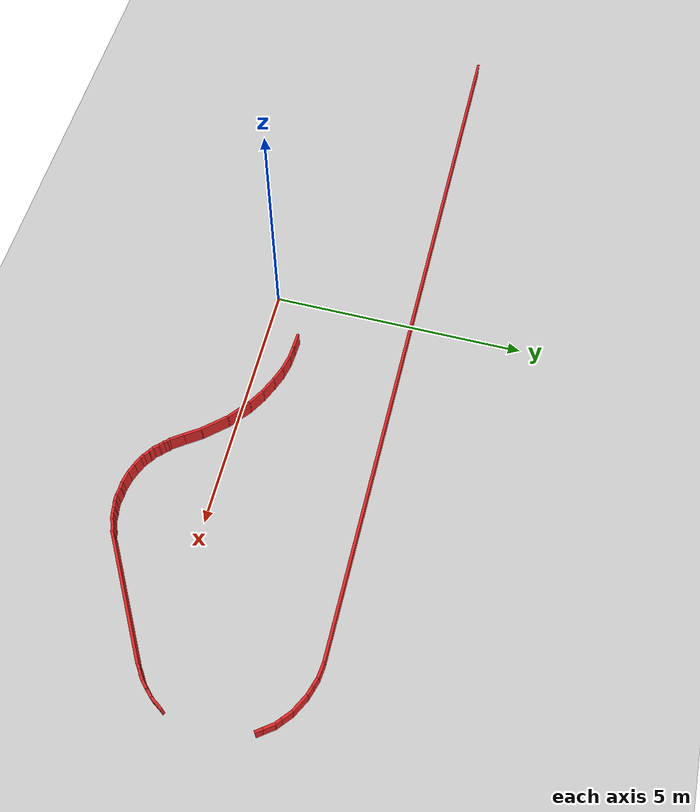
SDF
<sdf version="1.8">
 <world name="warehouse">
  <model name="ground_plane">
   <static>1</static>
   <link name="link">
    <collision name="collision">
     <geometry><plane><normal>0 0 1</normal><size>100 100</size></plane></geometry>
    </collision>
    <visual name="visual">
     <geometry><plane><normal>0 0 1</normal><size>100 100</size></plane></geometry>
     <material>
      <ambient>0.8 0.8 0.8 1</ambient>
      <diffuse>0.8 0.8 0.8 1</diffuse>
      <specular>0.8 0.8 0.8 1</specular>
     </material>
     <plugin name="__default__" filename="__default__"/>
    </visual>
   </link>
   <plugin name="__default__" filename="__default__"/>
  </model>
  <model name="outer_wall">
   <static>true</static>
   <link name="ow_0">
    <pose>0.029010 2.797262 0.2000 0 0 0.000168</pose>
    <collision name="ow_0_collision"><geometry><box><size>13.991454 0.05 0.4</size></box></geometry></collision>
    <visual name="ow_0_visual">
     <geometry><box><size>13.991454 0.05 0.4</size></box></geometry>
     <material>
      <ambient>0.85 0.15 0.15 1</ambient>
      <diffuse>0.85 0.15 0.15 1</diffuse>
      <specular>0.1 0.1 0.1 1</specular>
     </material>
    </visual>
   </link>
   <link name="ow_1">
    <pose>7.146808 2.782594 0.2000 0 0 -0.119394</pose>
    <collision name="ow_1_collision"><geometry><box><size>0.286036 0.05 0.4</size></box></geometry></collision>
    <visual name="ow_1_visual">
     <geometry><box><size>0.286036 0.05 0.4</size></box></geometry>
     <material>
      <ambient>0.85 0.15 0.15 1</ambient>
      <diffuse>0.85 0.15 0.15 1</diffuse>
      <specular>0.1 0.1 0.1 1</specular>
     </material>
    </visual>
   </link>
   <link name="ow_2">
    <pose>7.358935 2.741938 0.2000 0 0 -0.300553</pose>
    <collision name="ow_2_collision"><geometry><box><size>0.187626 0.05 0.4</size></box></geometry></collision>
    <visual name="ow_2_visual">
     <geometry><box><size>0.187626 0.05 0.4</size></box></geometry>
     <material>
      <ambient>0.85 0.15 0.15 1</ambient>
      <diffuse>0.85 0.15 0.15 1</diffuse>
      <specular>0.1 0.1 0.1 1</specular>
     </material>
    </visual>
   </link>
   <link name="ow_3">
    <pose>7.523251 2.690500 0.2000 0 0 -0.306055</pose>
    <collision name="ow_3_collision"><geometry><box><size>0.196733 0.05 0.4</size></box></geometry></collision>
    <visual name="ow_3_visual">
     <geometry><box><size>0.196733 0.05 0.4</size></box></geometry>
     <material>
      <ambient>0.85 0.15 0.15 1</ambient>
      <diffuse>0.85 0.15 0.15 1</diffuse>
      <specular>0.1 0.1 0.1 1</specular>
     </material>
    </visual>
   </link>
   <link name="ow_4">
    <pose>7.765473 2.579333 0.2000 0 0 -0.491412</pose>
    <collision name="ow_4_collision"><geometry><box><size>0.378326 0.05 0.4</size></box></geometry></collision>
    <visual name="ow_4_visual">
     <geometry><box><size>0.378326 0.05 0.4</size></box></geometry>
     <material>
      <ambient>0.85 0.15 0.15 1</ambient>
      <diffuse>0.85 0.15 0.15 1</diffuse>
      <specular>0.1 0.1 0.1 1</specular>
     </material>
    </visual>
   </link>
   <link name="ow_5">
    <pose>8.007550 2.422824 0.2000 0 0 -0.707728</pose>
    <collision name="ow_5_collision"><geometry><box><size>0.241401 0.05 0.4</size></box></geometry></collision>
    <visual name="ow_5_visual">
     <geometry><box><size>0.241401 0.05 0.4</size></box></geometry>
     <material>
      <ambient>0.85 0.15 0.15 1</ambient>
      <diffuse>0.85 0.15 0.15 1</diffuse>
      <specular>0.1 0.1 0.1 1</specular>
     </material>
    </visual>
   </link>
   <link name="ow_6">
    <pose>8.137835 2.312118 0.2000 0 0 -0.698098</pose>
    <collision name="ow_6_collision"><geometry><box><size>0.140538 0.05 0.4</size></box></geometry></collision>
    <visual name="ow_6_visual">
     <geometry><box><size>0.140538 0.05 0.4</size></box></geometry>
     <material>
      <ambient>0.85 0.15 0.15 1</ambient>
      <diffuse>0.85 0.15 0.15 1</diffuse>
      <specular>0.1 0.1 0.1 1</specular>
     </material>
    </visual>
   </link>
   <link name="ow_7">
    <pose>8.249366 2.182293 0.2000 0 0 -0.948377</pose>
    <collision name="ow_7_collision"><geometry><box><size>0.244221 0.05 0.4</size></box></geometry></collision>
    <visual name="ow_7_visual">
     <geometry><box><size>0.244221 0.05 0.4</size></box></geometry>
     <material>
      <ambient>0.85 0.15 0.15 1</ambient>
      <diffuse>0.85 0.15 0.15 1</diffuse>
      <specular>0.1 0.1 0.1 1</specular>
     </material>
    </visual>
   </link>
   <link name="ow_8">
    <pose>8.351868 2.039847 0.2000 0 0 -0.944688</pose>
    <collision name="ow_8_collision"><geometry><box><size>0.146764 0.05 0.4</size></box></geometry></collision>
    <visual name="ow_8_visual">
     <geometry><box><size>0.146764 0.05 0.4</size></box></geometry>
     <material>
      <ambient>0.85 0.15 0.15 1</ambient>
      <diffuse>0.85 0.15 0.15 1</diffuse>
      <specular>0.1 0.1 0.1 1</specular>
     </material>
    </visual>
   </link>
   <link name="ow_54">
    <pose>8.397176 0.341059 0.2000 0 0 -2.191264</pose>
    <collision name="ow_54_collision"><geometry><box><size>0.110679 0.05 0.4</size></box></geometry></collision>
    <visual name="ow_54_visual">
     <geometry><box><size>0.110679 0.05 0.4</size></box></geometry>
     <material>
      <ambient>0.85 0.15 0.15 1</ambient>
      <diffuse>0.85 0.15 0.15 1</diffuse>
      <specular>0.1 0.1 0.1 1</specular>
     </material>
    </visual>
   </link>
   <link name="ow_55">
    <pose>8.326747 0.232820 0.2000 0 0 -2.124067</pose>
    <collision name="ow_55_collision"><geometry><box><size>0.187723 0.05 0.4</size></box></geometry></collision>
    <visual name="ow_55_visual">
     <geometry><box><size>0.187723 0.05 0.4</size></box></geometry>
     <material>
      <ambient>0.85 0.15 0.15 1</ambient>
      <diffuse>0.85 0.15 0.15 1</diffuse>
      <specular>0.1 0.1 0.1 1</specular>
     </material>
    </visual>
   </link>
   <link name="ow_56">
    <pose>8.227238 0.101280 0.2000 0 0 -2.315158</pose>
    <collision name="ow_56_collision"><geometry><box><size>0.183666 0.05 0.4</size></box></geometry></collision>
    <visual name="ow_56_visual">
     <geometry><box><size>0.183666 0.05 0.4</size></box></geometry>
     <material>
      <ambient>0.85 0.15 0.15 1</ambient>
      <diffuse>0.85 0.15 0.15 1</diffuse>
      <specular>0.1 0.1 0.1 1</specular>
     </material>
    </visual>
   </link>
   <link name="ow_57">
    <pose>8.117167 -0.014267 0.2000 0 0 -2.349579</pose>
    <collision name="ow_57_collision"><geometry><box><size>0.175547 0.05 0.4</size></box></geometry></collision>
    <visual name="ow_57_visual">
     <geometry><box><size>0.175547 0.05 0.4</size></box></geometry>
     <material>
      <ambient>0.85 0.15 0.15 1</ambient>
      <diffuse>0.85 0.15 0.15 1</diffuse>
      <specular>0.1 0.1 0.1 1</specular>
     </material>
    </visual>
   </link>
   <link name="ow_58">
    <pose>8.018768 -0.103488 0.2000 0 0 -2.483094</pose>
    <collision name="ow_58_collision"><geometry><box><size>0.130681 0.05 0.4</size></box></geometry></collision>
    <visual name="ow_58_visual">
     <geometry><box><size>0.130681 0.05 0.4</size></box></geometry>
     <material>
      <ambient>0.85 0.15 0.15 1</ambient>
      <diffuse>0.85 0.15 0.15 1</diffuse>
      <specular>0.1 0.1 0.1 1</specular>
     </material>
    </visual>
   </link>
   <link name="ow_59">
    <pose>7.929174 -0.165946 0.2000 0 0 -2.583741</pose>
    <collision name="ow_59_collision"><geometry><box><size>0.128027 0.05 0.4</size></box></geometry></collision>
    <visual name="ow_59_visual">
     <geometry><box><size>0.128027 0.05 0.4</size></box></geometry>
     <material>
      <ambient>0.85 0.15 0.15 1</ambient>
      <diffuse>0.85 0.15 0.15 1</diffuse>
      <specular>0.1 0.1 0.1 1</specular>
     </material>
    </visual>
   </link>
   <link name="ow_60">
    <pose>7.846386 -0.223863 0.2000 0 0 -2.470929</pose>
    <collision name="ow_60_collision"><geometry><box><size>0.114365 0.05 0.4</size></box></geometry></collision>
    <visual name="ow_60_visual">
     <geometry><box><size>0.114365 0.05 0.4</size></box></geometry>
     <material>
      <ambient>0.85 0.15 0.15 1</ambient>
      <diffuse>0.85 0.15 0.15 1</diffuse>
      <specular>0.1 0.1 0.1 1</specular>
     </material>
    </visual>
   </link>
   <link name="ow_61">
    <pose>6.800926 -0.835768 0.2000 0 0 -2.617752</pose>
    <collision name="ow_61_collision"><geometry><box><size>2.349350 0.05 0.4</size></box></geometry></collision>
    <visual name="ow_61_visual">
     <geometry><box><size>2.349350 0.05 0.4</size></box></geometry>
     <material>
      <ambient>0.85 0.15 0.15 1</ambient>
      <diffuse>0.85 0.15 0.15 1</diffuse>
      <specular>0.1 0.1 0.1 1</specular>
     </material>
    </visual>
   </link>
   <link name="ow_62">
    <pose>5.748016 -1.446610 0.2000 0 0 -2.574871</pose>
    <collision name="ow_62_collision"><geometry><box><size>0.125283 0.05 0.4</size></box></geometry></collision>
    <visual name="ow_62_visual">
     <geometry><box><size>0.125283 0.05 0.4</size></box></geometry>
     <material>
      <ambient>0.85 0.15 0.15 1</ambient>
      <diffuse>0.85 0.15 0.15 1</diffuse>
      <specular>0.1 0.1 0.1 1</specular>
     </material>
    </visual>
   </link>
   <link name="ow_63">
    <pose>5.653544 -1.485310 0.2000 0 0 -2.936028</pose>
    <collision name="ow_63_collision"><geometry><box><size>0.122275 0.05 0.4</size></box></geometry></collision>
    <visual name="ow_63_visual">
     <geometry><box><size>0.122275 0.05 0.4</size></box></geometry>
     <material>
      <ambient>0.85 0.15 0.15 1</ambient>
      <diffuse>0.85 0.15 0.15 1</diffuse>
      <specular>0.1 0.1 0.1 1</specular>
     </material>
    </visual>
   </link>
   <link name="ow_64">
    <pose>5.544737 -1.525876 0.2000 0 0 -2.667722</pose>
    <collision name="ow_64_collision"><geometry><box><size>0.152043 0.05 0.4</size></box></geometry></collision>
    <visual name="ow_64_visual">
     <geometry><box><size>0.152043 0.05 0.4</size></box></geometry>
     <material>
      <ambient>0.85 0.15 0.15 1</ambient>
      <diffuse>0.85 0.15 0.15 1</diffuse>
      <specular>0.1 0.1 0.1 1</specular>
     </material>
    </visual>
   </link>
   <link name="ow_65">
    <pose>5.433304 -1.570444 0.2000 0 0 -2.874092</pose>
    <collision name="ow_65_collision"><geometry><box><size>0.129259 0.05 0.4</size></box></geometry></collision>
    <visual name="ow_65_visual">
     <geometry><box><size>0.129259 0.05 0.4</size></box></geometry>
     <material>
      <ambient>0.85 0.15 0.15 1</ambient>
      <diffuse>0.85 0.15 0.15 1</diffuse>
      <specular>0.1 0.1 0.1 1</specular>
     </material>
    </visual>
   </link>
   <link name="ow_66">
    <pose>5.325483 -1.591876 0.2000 0 0 -3.015431</pose>
    <collision name="ow_66_collision"><geometry><box><size>0.131153 0.05 0.4</size></box></geometry></collision>
    <visual name="ow_66_visual">
     <geometry><box><size>0.131153 0.05 0.4</size></box></geometry>
     <material>
      <ambient>0.85 0.15 0.15 1</ambient>
      <diffuse>0.85 0.15 0.15 1</diffuse>
      <specular>0.1 0.1 0.1 1</specular>
     </material>
    </visual>
   </link>
   <link name="ow_67">
    <pose>5.202708 -1.613469 0.2000 0 0 -2.929005</pose>
    <collision name="ow_67_collision"><geometry><box><size>0.158396 0.05 0.4</size></box></geometry></collision>
    <visual name="ow_67_visual">
     <geometry><box><size>0.158396 0.05 0.4</size></box></geometry>
     <material>
      <ambient>0.85 0.15 0.15 1</ambient>
      <diffuse>0.85 0.15 0.15 1</diffuse>
      <specular>0.1 0.1 0.1 1</specular>
     </material>
    </visual>
   </link>
   <link name="ow_68">
    <pose>5.079493 -1.631257 0.2000 0 0 -3.084303</pose>
    <collision name="ow_68_collision"><geometry><box><size>0.131332 0.05 0.4</size></box></geometry></collision>
    <visual name="ow_68_visual">
     <geometry><box><size>0.131332 0.05 0.4</size></box></geometry>
     <material>
      <ambient>0.85 0.15 0.15 1</ambient>
      <diffuse>0.85 0.15 0.15 1</diffuse>
      <specular>0.1 0.1 0.1 1</specular>
     </material>
    </visual>
   </link>
   <link name="ow_69">
    <pose>4.951503 -1.626990 0.2000 0 0 3.039025</pose>
    <collision name="ow_69_collision"><geometry><box><size>0.165597 0.05 0.4</size></box></geometry></collision>
    <visual name="ow_69_visual">
     <geometry><box><size>0.165597 0.05 0.4</size></box></geometry>
     <material>
      <ambient>0.85 0.15 0.15 1</ambient>
      <diffuse>0.85 0.15 0.15 1</diffuse>
      <specular>0.1 0.1 0.1 1</specular>
     </material>
    </visual>
   </link>
   <link name="ow_70">
    <pose>4.821139 -1.619537 0.2000 0 0 3.141593</pose>
    <collision name="ow_70_collision"><geometry><box><size>0.135895 0.05 0.4</size></box></geometry></collision>
    <visual name="ow_70_visual">
     <geometry><box><size>0.135895 0.05 0.4</size></box></geometry>
     <material>
      <ambient>0.85 0.15 0.15 1</ambient>
      <diffuse>0.85 0.15 0.15 1</diffuse>
      <specular>0.1 0.1 0.1 1</specular>
     </material>
    </visual>
   </link>
   <link name="ow_71">
    <pose>4.656503 -1.599160 0.2000 0 0 2.952871</pose>
    <collision name="ow_71_collision"><geometry><box><size>0.237235 0.05 0.4</size></box></geometry></collision>
    <visual name="ow_71_visual">
     <geometry><box><size>0.237235 0.05 0.4</size></box></geometry>
     <material>
      <ambient>0.85 0.15 0.15 1</ambient>
      <diffuse>0.85 0.15 0.15 1</diffuse>
      <specular>0.1 0.1 0.1 1</specular>
     </material>
    </visual>
   </link>
   <link name="ow_72">
    <pose>4.465679 -1.549882 0.2000 0 0 2.810709</pose>
    <collision name="ow_72_collision"><geometry><box><size>0.197920 0.05 0.4</size></box></geometry></collision>
    <visual name="ow_72_visual">
     <geometry><box><size>0.197920 0.05 0.4</size></box></geometry>
     <material>
      <ambient>0.85 0.15 0.15 1</ambient>
      <diffuse>0.85 0.15 0.15 1</diffuse>
      <specular>0.1 0.1 0.1 1</specular>
     </material>
    </visual>
   </link>
   <link name="ow_73">
    <pose>4.302099 -1.487505 0.2000 0 0 2.742812</pose>
    <collision name="ow_73_collision"><geometry><box><size>0.192420 0.05 0.4</size></box></geometry></collision>
    <visual name="ow_73_visual">
     <geometry><box><size>0.192420 0.05 0.4</size></box></geometry>
     <material>
      <ambient>0.85 0.15 0.15 1</ambient>
      <diffuse>0.85 0.15 0.15 1</diffuse>
      <specular>0.1 0.1 0.1 1</specular>
     </material>
    </visual>
   </link>
   <link name="ow_74">
    <pose>4.187053 -1.434073 0.2000 0 0 2.630646</pose>
    <collision name="ow_74_collision"><geometry><box><size>0.101627 0.05 0.4</size></box></geometry></collision>
    <visual name="ow_74_visual">
     <geometry><box><size>0.101627 0.05 0.4</size></box></geometry>
     <material>
      <ambient>0.85 0.15 0.15 1</ambient>
      <diffuse>0.85 0.15 0.15 1</diffuse>
      <specular>0.1 0.1 0.1 1</specular>
     </material>
    </visual>
   </link>
   <link name="ow_75">
    <pose>4.106365 -1.380696 0.2000 0 0 2.503746</pose>
    <collision name="ow_75_collision"><geometry><box><size>0.132244 0.05 0.4</size></box></geometry></collision>
    <visual name="ow_75_visual">
     <geometry><box><size>0.132244 0.05 0.4</size></box></geometry>
     <material>
      <ambient>0.85 0.15 0.15 1</ambient>
      <diffuse>0.85 0.15 0.15 1</diffuse>
      <specular>0.1 0.1 0.1 1</specular>
     </material>
    </visual>
   </link>
   <link name="ow_76">
    <pose>4.014897 -1.320321 0.2000 0 0 2.615118</pose>
    <collision name="ow_76_collision"><geometry><box><size>0.127290 0.05 0.4</size></box></geometry></collision>
    <visual name="ow_76_visual">
     <geometry><box><size>0.127290 0.05 0.4</size></box></geometry>
     <material>
      <ambient>0.85 0.15 0.15 1</ambient>
      <diffuse>0.85 0.15 0.15 1</diffuse>
      <specular>0.1 0.1 0.1 1</specular>
     </material>
    </visual>
   </link>
   <link name="ow_77">
    <pose>3.930475 -1.250434 0.2000 0 0 2.295871</pose>
    <collision name="ow_77_collision"><geometry><box><size>0.134722 0.05 0.4</size></box></geometry></collision>
    <visual name="ow_77_visual">
     <geometry><box><size>0.134722 0.05 0.4</size></box></geometry>
     <material>
      <ambient>0.85 0.15 0.15 1</ambient>
      <diffuse>0.85 0.15 0.15 1</diffuse>
      <specular>0.1 0.1 0.1 1</specular>
     </material>
    </visual>
   </link>
   <link name="ow_78">
    <pose>3.852966 -1.173173 0.2000 0 0 2.425712</pose>
    <collision name="ow_78_collision"><geometry><box><size>0.124617 0.05 0.4</size></box></geometry></collision>
    <visual name="ow_78_visual">
     <geometry><box><size>0.124617 0.05 0.4</size></box></geometry>
     <material>
      <ambient>0.85 0.15 0.15 1</ambient>
      <diffuse>0.85 0.15 0.15 1</diffuse>
      <specular>0.1 0.1 0.1 1</specular>
     </material>
    </visual>
   </link>
   <link name="ow_79">
    <pose>3.791794 -1.110022 0.2000 0 0 2.216244</pose>
    <collision name="ow_79_collision"><geometry><box><size>0.092159 0.05 0.4</size></box></geometry></collision>
    <visual name="ow_79_visual">
     <geometry><box><size>0.092159 0.05 0.4</size></box></geometry>
     <material>
      <ambient>0.85 0.15 0.15 1</ambient>
      <diffuse>0.85 0.15 0.15 1</diffuse>
      <specular>0.1 0.1 0.1 1</specular>
     </material>
    </visual>
   </link>
   <link name="ow_80">
    <pose>3.751130 -1.069153 0.2000 0 0 2.575580</pose>
    <collision name="ow_80_collision"><geometry><box><size>0.064928 0.05 0.4</size></box></geometry></collision>
    <visual name="ow_80_visual">
     <geometry><box><size>0.064928 0.05 0.4</size></box></geometry>
     <material>
      <ambient>0.85 0.15 0.15 1</ambient>
      <diffuse>0.85 0.15 0.15 1</diffuse>
      <specular>0.1 0.1 0.1 1</specular>
     </material>
    </visual>
   </link>
   <link name="ow_81">
    <pose>3.649255 -0.941085 0.2000 0 0 2.191284</pose>
    <collision name="ow_81_collision"><geometry><box><size>0.305207 0.05 0.4</size></box></geometry></collision>
    <visual name="ow_81_visual">
     <geometry><box><size>0.305207 0.05 0.4</size></box></geometry>
     <material>
      <ambient>0.85 0.15 0.15 1</ambient>
      <diffuse>0.85 0.15 0.15 1</diffuse>
      <specular>0.1 0.1 0.1 1</specular>
     </material>
    </visual>
   </link>
   <link name="ow_82">
    <pose>3.471512 -0.685414 0.2000 0 0 2.167322</pose>
    <collision name="ow_82_collision"><geometry><box><size>0.357605 0.05 0.4</size></box></geometry></collision>
    <visual name="ow_82_visual">
     <geometry><box><size>0.357605 0.05 0.4</size></box></geometry>
     <material>
      <ambient>0.85 0.15 0.15 1</ambient>
      <diffuse>0.85 0.15 0.15 1</diffuse>
      <specular>0.1 0.1 0.1 1</specular>
     </material>
    </visual>
   </link>
   <link name="ow_83">
    <pose>3.192515 -0.339963 0.2000 0 0 2.300775</pose>
    <collision name="ow_83_collision"><geometry><box><size>0.572349 0.05 0.4</size></box></geometry></collision>
    <visual name="ow_83_visual">
     <geometry><box><size>0.572349 0.05 0.4</size></box></geometry>
     <material>
      <ambient>0.85 0.15 0.15 1</ambient>
      <diffuse>0.85 0.15 0.15 1</diffuse>
      <specular>0.1 0.1 0.1 1</specular>
     </material>
    </visual>
   </link>
   <link name="ow_84">
    <pose>2.812937 0.023557 0.2000 0 0 2.462529</pose>
    <collision name="ow_84_collision"><geometry><box><size>0.522235 0.05 0.4</size></box></geometry></collision>
    <visual name="ow_84_visual">
     <geometry><box><size>0.522235 0.05 0.4</size></box></geometry>
     <material>
      <ambient>0.85 0.15 0.15 1</ambient>
      <diffuse>0.85 0.15 0.15 1</diffuse>
      <specular>0.1 0.1 0.1 1</specular>
     </material>
    </visual>
   </link>
   <link name="ow_85">
    <pose>2.467341 0.269006 0.2000 0 0 2.612913</pose>
    <collision name="ow_85_collision"><geometry><box><size>0.367867 0.05 0.4</size></box></geometry></collision>
    <visual name="ow_85_visual">
     <geometry><box><size>0.367867 0.05 0.4</size></box></geometry>
     <material>
      <ambient>0.85 0.15 0.15 1</ambient>
      <diffuse>0.85 0.15 0.15 1</diffuse>
      <specular>0.1 0.1 0.1 1</specular>
     </material>
    </visual>
   </link>
   <link name="ow_86">
    <pose>2.169083 0.421560 0.2000 0 0 2.728946</pose>
    <collision name="ow_86_collision"><geometry><box><size>0.343276 0.05 0.4</size></box></geometry></collision>
    <visual name="ow_86_visual">
     <geometry><box><size>0.343276 0.05 0.4</size></box></geometry>
     <material>
      <ambient>0.85 0.15 0.15 1</ambient>
      <diffuse>0.85 0.15 0.15 1</diffuse>
      <specular>0.1 0.1 0.1 1</specular>
     </material>
    </visual>
   </link>
   <link name="ow_87">
    <pose>1.885946 0.536227 0.2000 0 0 2.788062</pose>
    <collision name="ow_87_collision"><geometry><box><size>0.307941 0.05 0.4</size></box></geometry></collision>
    <visual name="ow_87_visual">
     <geometry><box><size>0.307941 0.05 0.4</size></box></geometry>
     <material>
      <ambient>0.85 0.15 0.15 1</ambient>
      <diffuse>0.85 0.15 0.15 1</diffuse>
      <specular>0.1 0.1 0.1 1</specular>
     </material>
    </visual>
   </link>
   <link name="ow_88">
    <pose>1.612075 0.616969 0.2000 0 0 2.922565</pose>
    <collision name="ow_88_collision"><geometry><box><size>0.304403 0.05 0.4</size></box></geometry></collision>
    <visual name="ow_88_visual">
     <geometry><box><size>0.304403 0.05 0.4</size></box></geometry>
     <material>
      <ambient>0.85 0.15 0.15 1</ambient>
      <diffuse>0.85 0.15 0.15 1</diffuse>
      <specular>0.1 0.1 0.1 1</specular>
     </material>
    </visual>
   </link>
   <link name="ow_89">
    <pose>1.355530 0.656497 0.2000 0 0 3.068422</pose>
    <collision name="ow_89_collision"><geometry><box><size>0.256113 0.05 0.4</size></box></geometry></collision>
    <visual name="ow_89_visual">
     <geometry><box><size>0.256113 0.05 0.4</size></box></geometry>
     <material>
      <ambient>0.85 0.15 0.15 1</ambient>
      <diffuse>0.85 0.15 0.15 1</diffuse>
      <specular>0.1 0.1 0.1 1</specular>
     </material>
    </visual>
   </link>
   <link name="ow_90">
    <pose>1.090640 0.672555 0.2000 0 0 3.091159</pose>
    <collision name="ow_90_collision"><geometry><box><size>0.314674 0.05 0.4</size></box></geometry></collision>
    <visual name="ow_90_visual">
     <geometry><box><size>0.314674 0.05 0.4</size></box></geometry>
     <material>
      <ambient>0.85 0.15 0.15 1</ambient>
      <diffuse>0.85 0.15 0.15 1</diffuse>
      <specular>0.1 0.1 0.1 1</specular>
     </material>
    </visual>
   </link>
  </model>
 </world>
</sdf>
